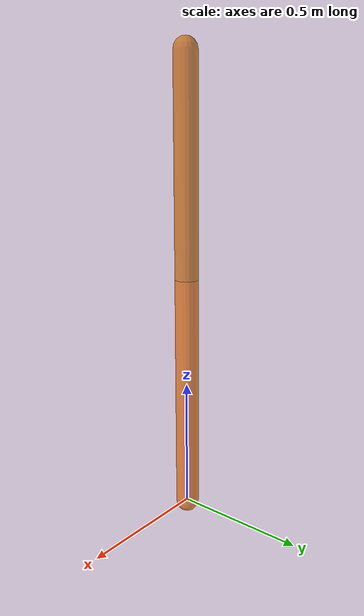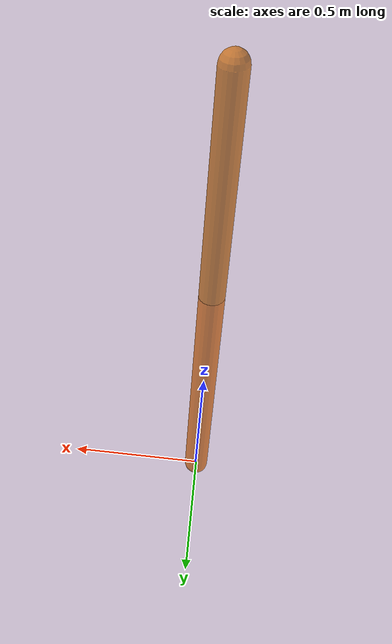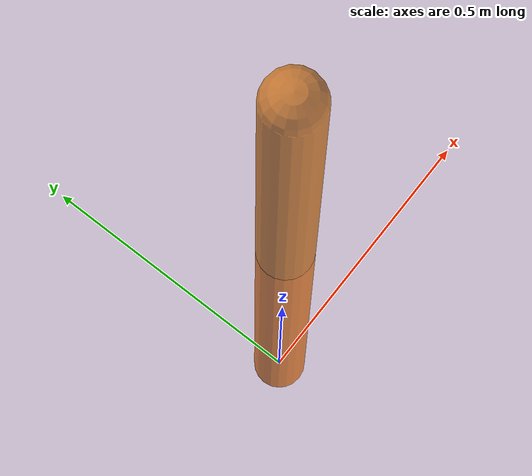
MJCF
<mujoco model="IDP_custom">
  <compiler angle="radian" coordinate="local" inertiafromgeom="false"/>
  <default>
    <joint damping="0.0"/>
    <geom contype="0" friction="0.0 0.0 0.0"/>
  </default>
  <option gravity="0 0 -9.81" integrator="RK4" timestep="0.001"/>
  <size nstack="3000" nuserdata="100" nuser_actuator="10"/>
  <worldbody>
    <geom name="floor" pos="0 0 -3" rgba="1 1 1 1" size="40 40 40" type="plane"/>
    <body name="leg" pos="0 0 0">
      <joint axis="0 1 0" limited="false" name="hinge" pos="0 0 0" type="hinge"/>
      <geom fromto="0 0 0 0 0 0.9222" name="cpole" rgba="0.9 0.4 0.0 0.7" size="0.045" type="capsule"/>
      <inertial pos="0 0 0.50982" mass="22.0892" diaginertia="7.937 7.937 0.01"/>
      <body name="body" pos ="0 0 0.9222">
        <joint axis="0 1 0" limited="false" name="hinge2" pos="0 0 0" type="hinge"/>
        <geom fromto="0 0 0 0 0 0.8178" name="cpole2" rgba="0.8 0.4 0.0 0.7" size="0.045" type="capsule"/>
        <inertial pos="0 0 0.30624" mass="46.5108" diaginertia="11.996 11.996 0.01"/>
      </body>
    </body>
  </worldbody>
  <actuator>
    <motor ctrllimited="true" ctrlrange='-1 1' gear="1000" joint="hinge"/>
    <motor ctrllimited="true" ctrlrange='-1 1' gear="1000" joint="hinge2"/>
  </actuator>
</mujoco>
